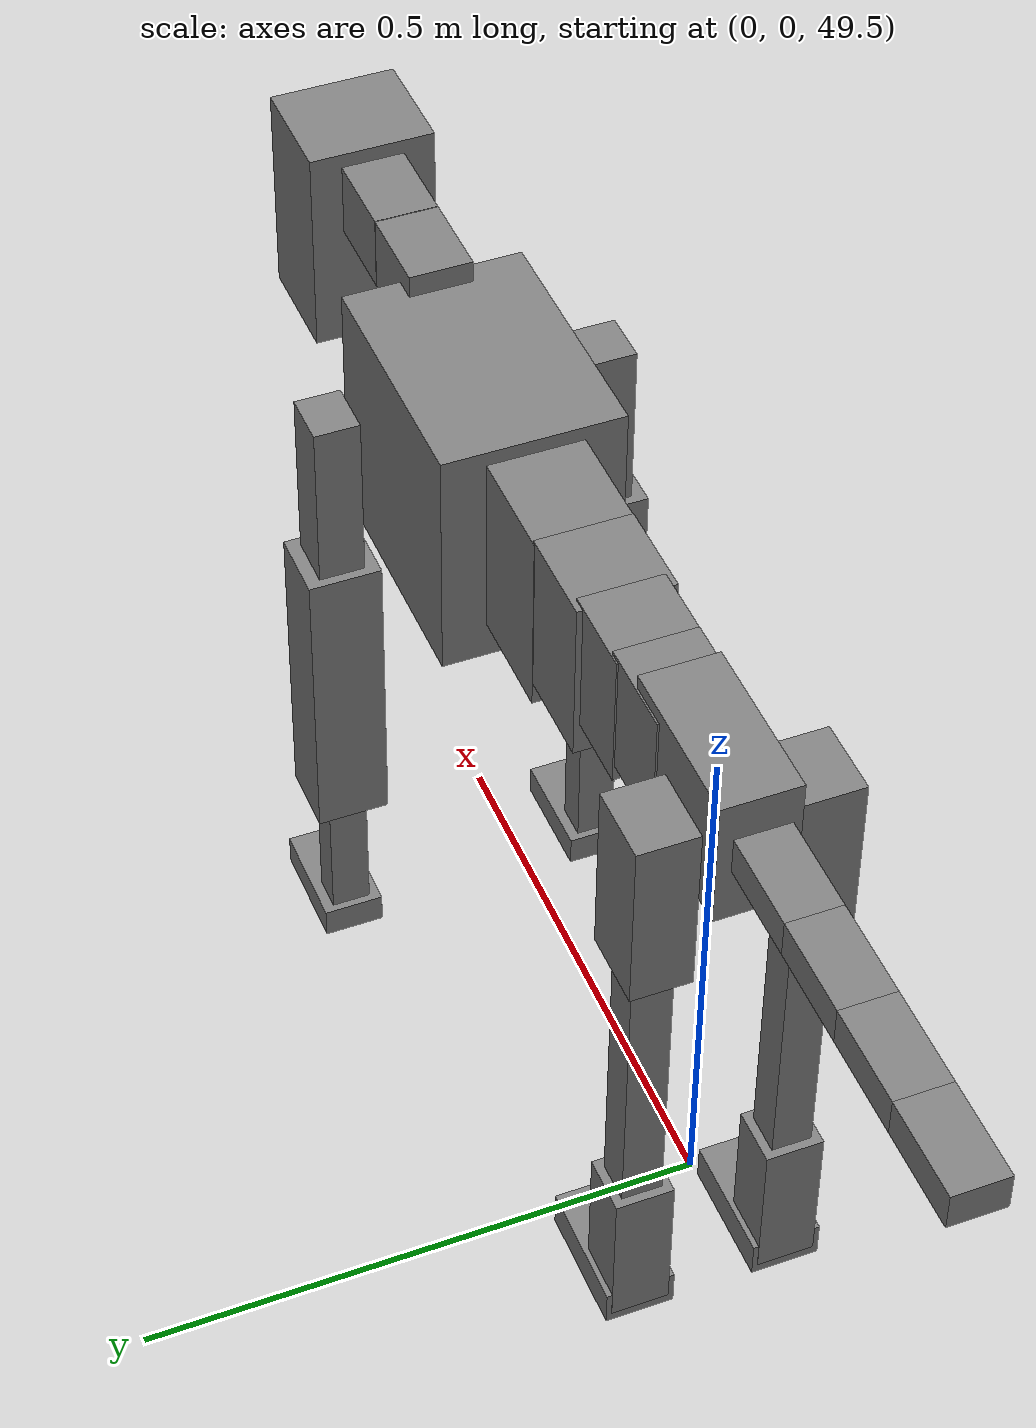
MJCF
<mujoco model="dog">

    <default>
        <joint armature="0.02" stiffness="1" damping="0.2" limited="true"/>
        <geom condim="3" friction="1 0.05 0.05" margin="0.01"/>
        <motor ctrllimited="true" ctrlrange="-1.0 1.0" forcelimited="true" gear="50"/>
    </default>

    <compiler inertiafromgeom="true" angle="radian"/>

    <option timestep="0.016" iterations="50" tolerance="1e-10" solver="Newton" jacobian="dense" cone="pyramidal"/>

    <size nconmax="20000" njmax="60000" nstack="5000000"/>
    <visual>
        <map force="0.1" zfar="30"/>
        <rgba haze="0.15 0.25 0.35 1"/>
        <quality shadowsize="2048"/>
        <global offwidth="800" offheight="800"/>
    </visual>

    <asset>
        <texture type="skybox" builtin="gradient" rgb1="0.3 0.5 0.7" rgb2="0 0 0" width="512" height="512"/>
        <texture name="texplane" type="2d" builtin="checker" rgb1=".2 .3 .4" rgb2=".1 0.15 0.2" width="512" height="512"
                 mark="cross" markrgb=".8 .8 .8"/>
        <texture name="texgeom" type="cube" builtin="flat" mark="cross" width="127" height="1278" rgb1="0.8 0.6 0.4"
                 rgb2="0.8 0.6 0.4" markrgb="1 1 1" random="0.01"/>

        <material name="matplane" reflectance="0.3" texture="texplane" texrepeat="1 1" texuniform="true"/>
        <material name="matgeom" texture="texgeom" texuniform="true" rgba="0.8 0.6 .4 1"/>
    </asset>

    <worldbody>
        <geom name="floor" pos="0 0 0" size="0 0 .25" type="plane" material="matplane" condim="3"/>

        <light directional="false" diffuse=".2 .2 .2" specular="0 0 0" pos="0 0 5" dir="0 0 -1" castshadow="false"/>
        <light mode="targetbodycom" target="torso" directional="false" diffuse=".8 .8 .8" specular="0.3 0.3 0.3"
               pos="0 0 4.0" dir="0 0 -1"/>

        <body name="root" pos="0 0 50">
            <freejoint name="root_1"/>
            <geom type="box" pos="0 0 -0.02" size="0.0774  0.0358  0.063" density="2030"/>

            <body name="spine1" pos="0.054 0 0">
                <joint name="spine1_y" axis="0 1 0" range="0 0.7" limited="true"/>
                <geom type="box" pos="0.02375 0 -0.03" size="0.04375  0.0375  0.05985" density="2030"/>

                <body name="spine2" pos="0.0612 0 0">
                    <joint name="spine2_y" axis="0 1 0" range="-0.15 0.15" limited="true"/>
                    <geom type="box" pos="0.03555  0  -0.04" size="0.04055  0.039  0.06615" density="2030"/>

                    <body name="spine3" pos="0.0730 0 0">
                        <joint name="spine3_y" axis="0 1 0" range="-0.15 0.15" limited="true"/>
                        <geom type="box" pos="0.03555  0  -0.057" size="0.04555  0.0445  0.081" density="2030"/>

                        <body name="spine4" pos="0.0780 0 0">
                            <joint name="spine4_y" axis="0 1 0" range="-0.15 0.15" limited="true"/>
                            <geom type="box" pos="0.05265  0  -0.07" size="0.05265  0.045  0.09135" density="2030"/>

                            <body name="torso" pos="0.1082 0 0">
                                <joint name="torso_y" axis="0 1 0" range="-0.15 0.15" limited="true"/>
                                <geom type="box" pos="0.11925  0  -0.085" size="0.11925  0.085  0.11745"
                                      density="2030"/>

                                <body name="neck1" pos="0.2160  0   0.0180">
                                    <joint name="neck1_y" axis="0 1 0" range="-1.2  -1" limited="true"/>
                                    <geom type="box" pos="0.0423  0  0" size="0.0423  0.03  0.036" density="2325"/>

                                    <body name="neck2" pos="0.0853  0  0">
                                        <joint name="neck2_y" axis="0 1 0" range="0.1  0" limited="true"/>
                                        <geom type="box" pos="0.0423  0  0" size="0.0423  0.03  0.036" density="2325"/>

                                        <body name="head" pos="0.0853  0  0">
                                            <joint name="head_y" axis="0 1 0" range="-0.3  -0.2" limited="true"/>
                                            <geom type="box" pos="0.0531  0  -0.055" size="0.0531  0.06  0.1044"
                                                  density="4030"/>

                                        </body>
                                    </body>
                                </body>

                                <body name="front_shoulder" pos="0.156  0   -0.0480">
                                    <joint name="front_shoulder_y" axis="0 1 0" range="-1 1.5" limited="true"/>
                                    <geom type="box" pos="0 0.13 -0.0709" size="0.0252  0.0215  0.0976" density="1158"/>
                                    <geom type="box" pos="0 -0.13 -0.0709" size="0.0252  0.0215  0.0976"
                                          density="1158"/>

                                    <body name="front_elbow" pos="0  0  -0.1419">
                                        <joint name="front_elbow_y" axis="0 1 0" range="-2 0" limited="true"/>
                                        <geom type="box" pos="0 0.13 -0.1529" size="0.0339  0.0346  0.1529"
                                              density="1081"/>
                                        <geom type="box" pos="0 -0.13 -0.1529" size="0.0339  0.0346  0.1529"
                                              density="1081"/>

                                        <body name="front_wrist" pos="0  0  -0.3059">
                                            <joint name="front_wrist_y" axis="0 1 0" range="-0.2 0" limited="true"/>
                                            <geom type="box" pos="0 0.13 -0.0777" size="0.0169  0.0188  0.0909"
                                                  density="1664"/>
                                            <geom type="box" pos="0 -0.13 -0.0777" size="0.0169  0.0188  0.0909"
                                                  density="1664"/>

                                            <body name="front_finger_end" pos="0  0  -0.1555">
                                                <joint name="front_finger_y" axis="0 1 0" range="-0.4 1"
                                                       limited="true"/>
                                                <geom type="box" pos="0.0291  0.13  -0.0003"
                                                      size="0.0533  0.0291  0.0153" density="1515"/>
                                                <geom type="box" pos="0.0291  -0.13  -0.0003"
                                                      size="0.0533  0.0291  0.0153" density="1515"/>

                                            </body>

                                        </body>
                                    </body>
                                </body>

                            </body>
                        </body>
                    </body>
                </body>
            </body>

            <body name="back_hip" pos="-0.03 0 -0.018">
                <joint name="back_hip_y" axis="0 1 0" range="-1.5 0.3" limited="true"/>
                <geom type="box" pos="0 0.07 -0.0622" size="0.0351  0.0276  0.0850" density="1154"/>
                <geom type="box" pos="0 -0.07 -0.0622" size="0.0351  0.0276  0.0850" density="1154"/>

                <body name="back_knee" pos="0  0  -0.1245">
                    <joint name="back_knee_y" axis="0 1 0" range="0 2.8" limited="true"/>
                    <geom type="box" pos="0 0.07 -0.1573" size="0.0189  0.0186  0.1728" density="1227"/>
                    <geom type="box" pos="0 -0.07 -0.1573" size="0.0189  0.0186  0.1728" density="1227"/>

                    <body name="back_ankle" pos="0  0  -0.3145">
                        <joint name="back_ankle_y" axis="0 1 0" range="-2.2 0" limited="true"/>
                        <geom type="box" pos="0 0.07 -0.0640" size="0.0269  0.0269  0.0753" density="1284"/>
                        <geom type="box" pos="0 -0.07 -0.0640" size="0.0269  0.0269  0.0753" density="1284"/>

                        <body name="back_toe_end" pos="0  0  -0.1280">
                            <joint name="back_toe_y" axis="0 1 0" range="-0.4 1" limited="true"/>
                            <geom type="box" pos="0.0319  0.07  -0.0026" size="0.0585  0.0319  0.0176" density="1515"/>
                            <geom type="box" pos="0.0319  -0.07  -0.0026" size="0.0585  0.0319  0.0176" density="1515"/>

                        </body>
                    </body>
                </body>
            </body>

            <body name="tail1" pos="-0.074 0 -0.006">
                <joint name="tail1_y" axis="0 1 0" range="-0.2 0.2" limited="true"/>
                <geom type="box" pos="-0.0536  0  0" size="0.045  0.025  0.0175" density="1587"/>

                <body name="tail2" pos="-0.09 0 0">
                    <joint name="tail2_y" axis="0 1 0" range="-0.2 0.2" limited="true"/>
                    <geom type="box" pos="-0.0536  0  0" size="0.045  0.025  0.0175" density="1587"/>

                    <body name="tail3" pos="-0.09 0 0">
                        <joint name="tail3_y" axis="0 1 0" range="-0.2 0.2" limited="true"/>
                        <geom type="box" pos="-0.0536  0  0" size="0.045  0.025  0.0175" density="1587"/>

                        <body name="tail4" pos="-0.09 0 0">
                            <joint name="tail4_y" axis="0 1 0" range="-0.2 0.2" limited="true"/>
                            <geom type="box" pos="-0.0536  0  0" size="0.045  0.025  0.0175" density="1587"/>

                        </body>
                    </body>
                </body>
            </body>
        </body>
    </worldbody>

    <actuator>
        <motor joint="spine1_y" forcerange="-150 150     "/>
        <motor joint="spine2_y" forcerange="-150 150     "/>
        <motor joint="spine3_y" forcerange="-150 150     "/>
        <motor joint="spine4_y" forcerange="-150 150     "/>
        <motor joint="torso_y" forcerange="-150 150     "/>
        <motor joint="neck1_y" forcerange="-100 100       "/>
        <motor joint="neck2_y" forcerange="-100 100       "/>
        <motor joint="head_y" forcerange="-150 150       "/>
        <motor joint="front_shoulder_y" forcerange="-104.29 139.22"/>
        <motor joint="front_elbow_y" forcerange="-194.37 157.39"/>
        <motor joint="front_wrist_y" forcerange="-58.68 91.46"/>
        <motor joint="front_finger_y" forcerange="-76.02 38.92"/>
        <motor joint="back_hip_y" forcerange="-271.33 296.12"/>
        <motor joint="back_knee_y" forcerange="-248.16 222.29"/>
        <motor joint="back_angle_y" forcerange="-98.30 232.26"/>
        <motor joint="back_toe_y" forcerange="-90.37 84.89"/>
        <motor joint="tail1_y" forcerange="-50 50     "/>
        <motor joint="tail2_y" forcerange="-50 50     "/>
        <motor joint="tail3_y" forcerange="-50 50     "/>
        <motor joint="tail4_y" forcerange="-50 50     "/>
    </actuator>
</mujoco>
